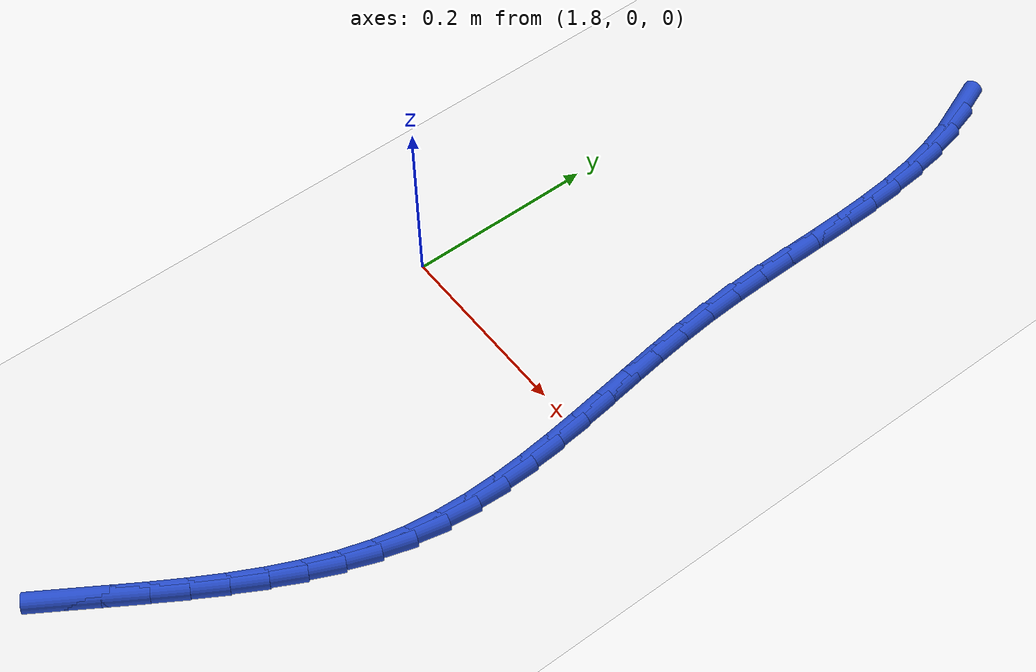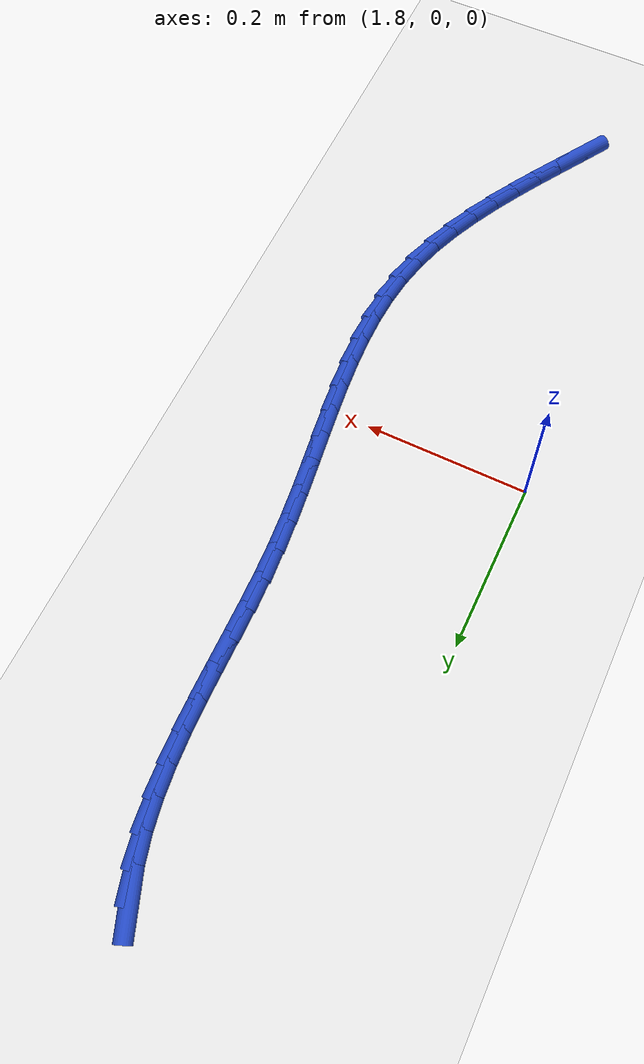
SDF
<sdf version="1.6">
 <world name="default">
  <model name="ground_plane">
   <static>1</static>
   <link name="link">
    <collision name="collision">
     <geometry><plane><normal>0 0 1</normal><size>100 100</size></plane></geometry>
     <surface><friction><ode><mu>100</mu><mu2>50</mu2></ode></friction></surface>
    </collision>
    <visual name="visual">
     <cast_shadows>0</cast_shadows>
     <geometry><plane><normal>0 0 1</normal><size>100 100</size></plane></geometry>
     <material>
      <script><uri>file://media/materials/scripts/gazebo.material</uri><name>Gazebo/WhiteGlow</name></script>
     </material>
    </visual>
   </link>
  </model>
  <model name="line">
   <link name="link_79">
    <pose>1.9888265682688337 0.5678852196818294 0.01 0 1.57 -1.1993627649953402</pose>
    <collision name="collision">
     <geometry><cylinder><radius>0.01</radius><length>0.08</length></cylinder></geometry>
    </collision>
    <visual name="visual">
     <material>
      <script><name>Gazebo/Blue</name><uri>file://media/materials/scripts/gazebo.material</uri></script>
     </material>
     <geometry><cylinder><radius>0.01</radius><length>0.08</length></cylinder></geometry>
    </visual>
   </link>
   <link name="link_80">
    <pose>2.000669081216131 0.5374818603496584 0.01 0 1.57 -1.3002107066957713</pose>
    <collision name="collision">
     <geometry><cylinder><radius>0.01</radius><length>0.08</length></cylinder></geometry>
    </collision>
    <visual name="visual">
     <material>
      <script><name>Gazebo/Blue</name><uri>file://media/materials/scripts/gazebo.material</uri></script>
     </material>
     <geometry><cylinder><radius>0.01</radius><length>0.08</length></cylinder></geometry>
    </visual>
   </link>
   <link name="link_81">
    <pose>2.0094969241965077 0.5056570508337259 0.01 0 1.57 -1.3837526450047108</pose>
    <collision name="collision">
     <geometry><cylinder><radius>0.01</radius><length>0.08</length></cylinder></geometry>
    </collision>
    <visual name="visual">
     <material>
      <script><name>Gazebo/Blue</name><uri>file://media/materials/scripts/gazebo.material</uri></script>
     </material>
     <geometry><cylinder><radius>0.01</radius><length>0.08</length></cylinder></geometry>
    </visual>
   </link>
   <link name="link_82">
    <pose>2.015756214165011 0.4725838957786356 0.01 0 1.57 -1.4502403525491085</pose>
    <collision name="collision">
     <geometry><cylinder><radius>0.01</radius><length>0.08</length></cylinder></geometry>
    </collision>
    <visual name="visual">
     <material>
      <script><name>Gazebo/Blue</name><uri>file://media/materials/scripts/gazebo.material</uri></script>
     </material>
     <geometry><cylinder><radius>0.01</radius><length>0.08</length></cylinder></geometry>
    </visual>
   </link>
   <link name="link_83">
    <pose>2.0198930680766907 0.43843549982899166 0.01 0 1.57 -1.50071165947006</pose>
    <collision name="collision">
     <geometry><cylinder><radius>0.01</radius><length>0.08</length></cylinder></geometry>
    </collision>
    <visual name="visual">
     <material>
      <script><name>Gazebo/Blue</name><uri>file://media/materials/scripts/gazebo.material</uri></script>
     </material>
     <geometry><cylinder><radius>0.01</radius><length>0.08</length></cylinder></geometry>
    </visual>
   </link>
   <link name="link_84">
    <pose>2.0223536028865947 0.40338496762939674 0.01 0 1.57 -1.5364234069160507</pose>
    <collision name="collision">
     <geometry><cylinder><radius>0.01</radius><length>0.08</length></cylinder></geometry>
    </collision>
    <visual name="visual">
     <material>
      <script><name>Gazebo/Blue</name><uri>file://media/materials/scripts/gazebo.material</uri></script>
     </material>
     <geometry><cylinder><radius>0.01</radius><length>0.08</length></cylinder></geometry>
    </visual>
   </link>
   <link name="link_85">
    <pose>2.0235839355497705 0.36760540382445467 0.01 0 1.57 -1.5585156329553689</pose>
    <collision name="collision">
     <geometry><cylinder><radius>0.01</radius><length>0.08</length></cylinder></geometry>
    </collision>
    <visual name="visual">
     <material>
      <script><name>Gazebo/Blue</name><uri>file://media/materials/scripts/gazebo.material</uri></script>
     </material>
     <geometry><cylinder><radius>0.01</radius><length>0.08</length></cylinder></geometry>
    </visual>
   </link>
   <link name="link_86">
    <pose>2.024030183021268 0.33126991305876974 0.01 0 1.57 -1.5678474189635603</pose>
    <collision name="collision">
     <geometry><cylinder><radius>0.01</radius><length>0.08</length></cylinder></geometry>
    </collision>
    <visual name="visual">
     <material>
      <script><name>Gazebo/Blue</name><uri>file://media/materials/scripts/gazebo.material</uri></script>
     </material>
     <geometry><cylinder><radius>0.01</radius><length>0.08</length></cylinder></geometry>
    </visual>
   </link>
   <link name="link_87">
    <pose>2.0241384622561363 0.2945515999769446 0.01 0 1.57 -1.5649355898183193</pose>
    <collision name="collision">
     <geometry><cylinder><radius>0.01</radius><length>0.08</length></cylinder></geometry>
    </collision>
    <visual name="visual">
     <material>
      <script><name>Gazebo/Blue</name><uri>file://media/materials/scripts/gazebo.material</uri></script>
     </material>
     <geometry><cylinder><radius>0.01</radius><length>0.08</length></cylinder></geometry>
    </visual>
   </link>
   <link name="link_88">
    <pose>2.0243548902094233 0.25762356922358326 0.01 0 1.57 -1.5499498664116245</pose>
    <collision name="collision">
     <geometry><cylinder><radius>0.01</radius><length>0.08</length></cylinder></geometry>
    </collision>
    <visual name="visual">
     <material>
      <script><name>Gazebo/Blue</name><uri>file://media/materials/scripts/gazebo.material</uri></script>
     </material>
     <geometry><cylinder><radius>0.01</radius><length>0.08</length></cylinder></geometry>
    </visual>
   </link>
   <link name="link_89">
    <pose>2.025125583836177 0.22065892544328924 0.01 0 1.57 -1.5227458943857575</pose>
    <collision name="collision">
     <geometry><cylinder><radius>0.01</radius><length>0.08</length></cylinder></geometry>
    </collision>
    <visual name="visual">
     <material>
      <script><name>Gazebo/Blue</name><uri>file://media/materials/scripts/gazebo.material</uri></script>
     </material>
     <geometry><cylinder><radius>0.01</radius><length>0.08</length></cylinder></geometry>
    </visual>
   </link>
   <link name="link_90">
    <pose>2.0268965566103003 0.18383075327276274 0.01 0 1.57 -1.4878818373896279</pose>
    <collision name="collision">
     <geometry><cylinder><radius>0.01</radius><length>0.08</length></cylinder></geometry>
    </collision>
    <visual name="visual">
     <material>
      <script><name>Gazebo/Blue</name><uri>file://media/materials/scripts/gazebo.material</uri></script>
     </material>
     <geometry><cylinder><radius>0.01</radius><length>0.08</length></cylinder></geometry>
    </visual>
   </link>
   <link name="link_91">
    <pose>2.029934321195048 0.14727743117153433 0.01 0 1.57 -1.4602581027661024</pose>
    <collision name="collision">
     <geometry><cylinder><radius>0.01</radius><length>0.08</length></cylinder></geometry>
    </collision>
    <visual name="visual">
     <material>
      <script><name>Gazebo/Blue</name><uri>file://media/materials/scripts/gazebo.material</uri></script>
     </material>
     <geometry><cylinder><radius>0.01</radius><length>0.08</length></cylinder></geometry>
    </visual>
   </link>
   <link name="link_92">
    <pose>2.0339572955750143 0.11103136442300662 0.01 0 1.57 -1.442838022339493</pose>
    <collision name="collision">
     <geometry><cylinder><radius>0.01</radius><length>0.08</length></cylinder></geometry>
    </collision>
    <visual name="visual">
     <material>
      <script><name>Gazebo/Blue</name><uri>file://media/materials/scripts/gazebo.material</uri></script>
     </material>
     <geometry><cylinder><radius>0.01</radius><length>0.08</length></cylinder></geometry>
    </visual>
   </link>
   <link name="link_93">
    <pose>2.0385796528633966 0.07510480274157602 0.01 0 1.57 -1.4357630098322816</pose>
    <collision name="collision">
     <geometry><cylinder><radius>0.01</radius><length>0.08</length></cylinder></geometry>
    </collision>
    <visual name="visual">
     <material>
      <script><name>Gazebo/Blue</name><uri>file://media/materials/scripts/gazebo.material</uri></script>
     </material>
     <geometry><cylinder><radius>0.01</radius><length>0.08</length></cylinder></geometry>
    </visual>
   </link>
   <link name="link_94">
    <pose>2.043415566173392 0.039509995841637974 0.01 0 1.57 -1.4392612947823977</pose>
    <collision name="collision">
     <geometry><cylinder><radius>0.01</radius><length>0.08</length></cylinder></geometry>
    </collision>
    <visual name="visual">
     <material>
      <script><name>Gazebo/Blue</name><uri>file://media/materials/scripts/gazebo.material</uri></script>
     </material>
     <geometry><cylinder><radius>0.01</radius><length>0.08</length></cylinder></geometry>
    </visual>
   </link>
   <link name="link_95">
    <pose>2.0480792086181956 0.004259193437588812 0.01 0 1.57 -1.4536789968735695</pose>
    <collision name="collision">
     <geometry><cylinder><radius>0.01</radius><length>0.08</length></cylinder></geometry>
    </collision>
    <visual name="visual">
     <material>
      <script><name>Gazebo/Blue</name><uri>file://media/materials/scripts/gazebo.material</uri></script>
     </material>
     <geometry><cylinder><radius>0.01</radius><length>0.08</length></cylinder></geometry>
    </visual>
   </link>
   <link name="link_96">
    <pose>2.0521847533110043 -0.030635354756175244 0.01 0 1.57 -1.4794789711692231</pose>
    <collision name="collision">
     <geometry><cylinder><radius>0.01</radius><length>0.08</length></cylinder></geometry>
    </collision>
    <visual name="visual">
     <material>
      <script><name>Gazebo/Blue</name><uri>file://media/materials/scripts/gazebo.material</uri></script>
     </material>
     <geometry><cylinder><radius>0.01</radius><length>0.08</length></cylinder></geometry>
    </visual>
   </link>
   <link name="link_97">
    <pose>2.055346373365014 -0.0651613990252582 0.01 0 1.57 -1.5171984805158005</pose>
    <collision name="collision">
     <geometry><cylinder><radius>0.01</radius><length>0.08</length></cylinder></geometry>
    </collision>
    <visual name="visual">
     <material>
      <script><name>Gazebo/Blue</name><uri>file://media/materials/scripts/gazebo.material</uri></script>
     </material>
     <geometry><cylinder><radius>0.01</radius><length>0.08</length></cylinder></geometry>
    </visual>
   </link>
   <link name="link_98">
    <pose>2.057178241893421 -0.09930668965526321 0.01 0 1.57 -1.5673509408600275</pose>
    <collision name="collision">
     <geometry><cylinder><radius>0.01</radius><length>0.08</length></cylinder></geometry>
    </collision>
    <visual name="visual">
     <material>
      <script><name>Gazebo/Blue</name><uri>file://media/materials/scripts/gazebo.material</uri></script>
     </material>
     <geometry><cylinder><radius>0.01</radius><length>0.08</length></cylinder></geometry>
    </visual>
   </link>
   <link name="link_99">
    <pose>2.057294532009421 -0.13305897693179558 0.01 0 1.57 1.5113375077737559</pose>
    <collision name="collision">
     <geometry><cylinder><radius>0.01</radius><length>0.08</length></cylinder></geometry>
    </collision>
    <visual name="visual">
     <material>
      <script><name>Gazebo/Blue</name><uri>file://media/materials/scripts/gazebo.material</uri></script>
     </material>
     <geometry><cylinder><radius>0.01</radius><length>0.08</length></cylinder></geometry>
    </visual>
   </link>
   <link name="link_100">
    <pose>2.055309416826212 -0.16640601114045855 0.01 0 1.57 1.4358065854540032</pose>
    <collision name="collision">
     <geometry><cylinder><radius>0.01</radius><length>0.08</length></cylinder></geometry>
    </collision>
    <visual name="visual">
     <material>
      <script><name>Gazebo/Blue</name><uri>file://media/materials/scripts/gazebo.material</uri></script>
     </material>
     <geometry><cylinder><radius>0.01</radius><length>0.08</length></cylinder></geometry>
    </visual>
   </link>
   <link name="link_101">
    <pose>2.0508370694569886 -0.19933554256685598 0.01 0 1.57 1.349191489784569</pose>
    <collision name="collision">
     <geometry><cylinder><radius>0.01</radius><length>0.08</length></cylinder></geometry>
    </collision>
    <visual name="visual">
     <material>
      <script><name>Gazebo/Blue</name><uri>file://media/materials/scripts/gazebo.material</uri></script>
     </material>
     <geometry><cylinder><radius>0.01</radius><length>0.08</length></cylinder></geometry>
    </visual>
   </link>
   <link name="link_102">
    <pose>2.043514384132485 -0.23183673676880046 0.01 0 1.57 1.264665724538067</pose>
    <collision name="collision">
     <geometry><cylinder><radius>0.01</radius><length>0.08</length></cylinder></geometry>
    </collision>
    <visual name="visual">
     <material>
      <script><name>Gazebo/Blue</name><uri>file://media/materials/scripts/gazebo.material</uri></script>
     </material>
     <geometry><cylinder><radius>0.01</radius><length>0.08</length></cylinder></geometry>
    </visual>
   </link>
   <link name="link_103">
    <pose>2.033372889021421 -0.2639233405969953 0.01 0 1.57 1.1926925424126165</pose>
    <collision name="collision">
     <geometry><cylinder><radius>0.01</radius><length>0.08</length></cylinder></geometry>
    </collision>
    <visual name="visual">
     <material>
      <script><name>Gazebo/Blue</name><uri>file://media/materials/scripts/gazebo.material</uri></script>
     </material>
     <geometry><cylinder><radius>0.01</radius><length>0.08</length></cylinder></geometry>
    </visual>
   </link>
   <link name="link_104">
    <pose>2.0207785344286764 -0.29562993167133766 0.01 0 1.57 1.1332485500492153</pose>
    <collision name="collision">
     <geometry><cylinder><radius>0.01</radius><length>0.08</length></cylinder></geometry>
    </collision>
    <visual name="visual">
     <material>
      <script><name>Gazebo/Blue</name><uri>file://media/materials/scripts/gazebo.material</uri></script>
     </material>
     <geometry><cylinder><radius>0.01</radius><length>0.08</length></cylinder></geometry>
    </visual>
   </link>
   <link name="link_105">
    <pose>2.00610784585513 -0.3269917463284871 0.01 0 1.57 1.0856328472585683</pose>
    <collision name="collision">
     <geometry><cylinder><radius>0.01</radius><length>0.08</length></cylinder></geometry>
    </collision>
    <visual name="visual">
     <material>
      <script><name>Gazebo/Blue</name><uri>file://media/materials/scripts/gazebo.material</uri></script>
     </material>
     <geometry><cylinder><radius>0.01</radius><length>0.08</length></cylinder></geometry>
    </visual>
   </link>
   <link name="link_106">
    <pose>1.9897373488016623 -0.35804402090510523 0.01 0 1.57 1.0490488121074244</pose>
    <collision name="collision">
     <geometry><cylinder><radius>0.01</radius><length>0.08</length></cylinder></geometry>
    </collision>
    <visual name="visual">
     <material>
      <script><name>Gazebo/Blue</name><uri>file://media/materials/scripts/gazebo.material</uri></script>
     </material>
     <geometry><cylinder><radius>0.01</radius><length>0.08</length></cylinder></geometry>
    </visual>
   </link>
   <link name="link_107">
    <pose>1.9720435687691538 -0.3888219917378517 0.01 0 1.57 1.0227746016820844</pose>
    <collision name="collision">
     <geometry><cylinder><radius>0.01</radius><length>0.08</length></cylinder></geometry>
    </collision>
    <visual name="visual">
     <material>
      <script><name>Gazebo/Blue</name><uri>file://media/materials/scripts/gazebo.material</uri></script>
     </material>
     <geometry><cylinder><radius>0.01</radius><length>0.08</length></cylinder></geometry>
    </visual>
   </link>
   <link name="link_108">
    <pose>1.9534030312584856 -0.41936089516338676 0.01 0 1.57 1.00626088463904</pose>
    <collision name="collision">
     <geometry><cylinder><radius>0.01</radius><length>0.08</length></cylinder></geometry>
    </collision>
    <visual name="visual">
     <material>
      <script><name>Gazebo/Blue</name><uri>file://media/materials/scripts/gazebo.material</uri></script>
     </material>
     <geometry><cylinder><radius>0.01</radius><length>0.08</length></cylinder></geometry>
    </visual>
   </link>
   <link name="link_109">
    <pose>1.9341922617705378 -0.4496959675183708 0.01 0 1.57 0.999183515471098</pose>
    <collision name="collision">
     <geometry><cylinder><radius>0.01</radius><length>0.08</length></cylinder></geometry>
    </collision>
    <visual name="visual">
     <material>
      <script><name>Gazebo/Blue</name><uri>file://media/materials/scripts/gazebo.material</uri></script>
     </material>
     <geometry><cylinder><radius>0.01</radius><length>0.08</length></cylinder></geometry>
    </visual>
   </link>
   <link name="link_110">
    <pose>1.914787785806191 -0.4798624451394641 0.01 0 1.57 1.001245543839531</pose>
    <collision name="collision">
     <geometry><cylinder><radius>0.01</radius><length>0.08</length></cylinder></geometry>
    </collision>
    <visual name="visual">
     <material>
      <script><name>Gazebo/Blue</name><uri>file://media/materials/scripts/gazebo.material</uri></script>
     </material>
     <geometry><cylinder><radius>0.01</radius><length>0.08</length></cylinder></geometry>
    </visual>
   </link>
  </model>
 </world>
</sdf>
